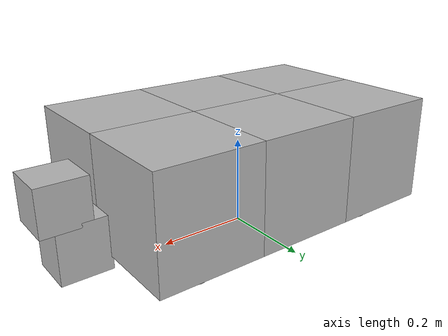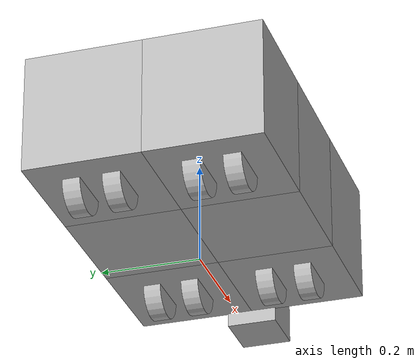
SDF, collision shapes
<sdf version='1.7'>
  <model name='robile3_config'>
    <link name='base_link'>
      <inertial>
        <pose>0.015691 9.6e-05 0.171122 0 -0 0</pose>
        <mass>31.1</mass>
        <inertia>
          <ixx>0.692584</ixx>
          <ixy>4.5574e-05</ixy>
          <ixz>-0.0273444</ixz>
          <iyy>1.56699</iyy>
          <iyz>6.36656e-06</iyz>
          <izz>1.9621</izz>
        </inertia>
      </inertial>
      <collision name='base_link_fixed_joint_lump__base_laser_mount_collision'>
        <pose>0.4 0 0.08 0 -0 1.57079</pose>
        <geometry>
          <box>
            <size>0.1 0.108 0.117</size>
          </box>
        </geometry>
      </collision>
      <collision name='base_link_fixed_joint_lump__base_laser_collision_1'>
        <pose>0.43 0 0.179 0 -0 0</pose>
        <geometry>
          <box>
            <size>0.105 0.1 0.1</size>
          </box>
        </geometry>
        <surface>
          <contact>
            <ode/>
          </contact>
          <friction>
            <ode/>
          </friction>
        </surface>
      </collision>
      <collision name='base_link_fixed_joint_lump__robile_1_link_collision_2'>
        <pose>0.2335 0.1166 0.169 0 -0 0</pose>
        <geometry>
          <box>
            <size>0.233 0.233 0.239</size>
          </box>
        </geometry>
      </collision>
      <collision name='base_link_fixed_joint_lump__robile_2_link_collision_3'>
        <pose>0.2335 -0.1164 0.169 0 -0 0</pose>
        <geometry>
          <box>
            <size>0.233 0.233 0.239</size>
          </box>
        </geometry>
      </collision>
      <collision name='base_link_fixed_joint_lump__robile_3_link_collision_4'>
        <pose>0.0005 0.1166 0.169 0 -0 0</pose>
        <geometry>
          <box>
            <size>0.233 0.233 0.239</size>
          </box>
        </geometry>
      </collision>
      <collision name='base_link_fixed_joint_lump__robile_4_link_collision_5'>
        <pose>0.0005 -0.1164 0.169 0 -0 0</pose>
        <geometry>
          <box>
            <size>0.233 0.233 0.239</size>
          </box>
        </geometry>
      </collision>
      <collision name='base_link_fixed_joint_lump__robile_5_link_collision_6'>
        <pose>-0.2325 0.1166 0.169 0 -0 0</pose>
        <geometry>
          <box>
            <size>0.233 0.233 0.239</size>
          </box>
        </geometry>
      </collision>
      <collision name='base_link_fixed_joint_lump__robile_6_link_collision_7'>
        <pose>-0.2325 -0.1164 0.169 0 -0 0</pose>
        <geometry>
          <box>
            <size>0.233 0.233 0.239</size>
          </box>
        </geometry>
      </collision>
      <visual name='base_link_fixed_joint_lump__base_laser_mount_visual'>
        <pose>0.4 0 0.08 0 -0 1.57079</pose>
        <geometry>
          <mesh>
            <scale>1 1 1</scale>
            <uri>model://robile_description/meshes/sensors/lms1xx_mount.dae</uri>
          </mesh>
        </geometry>
      </visual>
      <visual name='base_link_fixed_joint_lump__base_laser_visual_1'>
        <pose>0.43 0 0.229 0 -0 0</pose>
        <geometry>
          <mesh>
            <scale>1 1 1</scale>
            <uri>model://robile_description/meshes/sensors/sick-lms1xx.dae</uri>
          </mesh>
        </geometry>
      </visual>
      <visual name='base_link_fixed_joint_lump__robile_1_link_visual_2'>
        <pose>0.233 0.1165 0.05 0 -0 0</pose>
        <geometry>
          <mesh>
            <scale>1 1 1</scale>
            <uri>file:///home/jobe/ros2_ws/install/robile_description/share/robile_description/meshes/robile_brick_housing/wheeled_brick_housing.dae</uri>
          </mesh>
        </geometry>
      </visual>
      <visual name='base_link_fixed_joint_lump__robile_1_link_visual_3'>
        <pose>0.233 0.1165 0.05 0 -0 0</pose>
        <geometry>
          <mesh>
            <scale>1 1 1</scale>
            <uri>file:///home/jobe/ros2_ws/install/robile_description/share/robile_description/meshes/robile_brick_housing/lid.dae</uri>
          </mesh>
        </geometry>
      </visual>
      <visual name='base_link_fixed_joint_lump__robile_1_link_visual_4'>
        <pose>0.233 0.1165 0.05 0 -0 0</pose>
        <geometry>
          <mesh>
            <scale>1 1 1</scale>
            <uri>file:///home/jobe/ros2_ws/install/robile_description/share/robile_description/meshes/robile_brick_housing/lid_cover_red.dae</uri>
          </mesh>
        </geometry>
      </visual>
      <visual name='base_link_fixed_joint_lump__robile_2_link_visual_5'>
        <pose>0.233 -0.1165 0.05 0 -0 0</pose>
        <geometry>
          <mesh>
            <scale>1 1 1</scale>
            <uri>file:///home/jobe/ros2_ws/install/robile_description/share/robile_description/meshes/robile_brick_housing/wheeled_brick_housing.dae</uri>
          </mesh>
        </geometry>
      </visual>
      <visual name='base_link_fixed_joint_lump__robile_2_link_visual_6'>
        <pose>0.233 -0.1165 0.05 0 -0 0</pose>
        <geometry>
          <mesh>
            <scale>1 1 1</scale>
            <uri>file:///home/jobe/ros2_ws/install/robile_description/share/robile_description/meshes/robile_brick_housing/lid.dae</uri>
          </mesh>
        </geometry>
      </visual>
      <visual name='base_link_fixed_joint_lump__robile_2_link_visual_7'>
        <pose>0.233 -0.1165 0.05 0 -0 0</pose>
        <geometry>
          <mesh>
            <scale>1 1 1</scale>
            <uri>file:///home/jobe/ros2_ws/install/robile_description/share/robile_description/meshes/robile_brick_housing/lid_cover_red.dae</uri>
          </mesh>
        </geometry>
      </visual>
      <visual name='base_link_fixed_joint_lump__robile_3_link_visual_8'>
        <pose>0 0.1165 0.05 0 -0 0</pose>
        <geometry>
          <mesh>
            <scale>1 1 1</scale>
            <uri>file:///home/jobe/ros2_ws/install/robile_description/share/robile_description/meshes/robile_brick_housing/general_brick_housing.dae</uri>
          </mesh>
        </geometry>
      </visual>
      <visual name='base_link_fixed_joint_lump__robile_3_link_visual_9'>
        <pose>0 0.1165 0.05 0 -0 0</pose>
        <geometry>
          <mesh>
            <scale>1 1 1</scale>
            <uri>file:///home/jobe/ros2_ws/install/robile_description/share/robile_description/meshes/robile_brick_housing/lid.dae</uri>
          </mesh>
        </geometry>
      </visual>
      <visual name='base_link_fixed_joint_lump__robile_3_link_visual_10'>
        <pose>0 0.1165 0.05 0 -0 0</pose>
        <geometry>
          <mesh>
            <scale>1 1 1</scale>
            <uri>file:///home/jobe/ros2_ws/install/robile_description/share/robile_description/meshes/robile_brick_housing/lid_cover_yellow.dae</uri>
          </mesh>
        </geometry>
      </visual>
      <visual name='base_link_fixed_joint_lump__robile_4_link_visual_11'>
        <pose>0 -0.1165 0.05 0 -0 0</pose>
        <geometry>
          <mesh>
            <scale>1 1 1</scale>
            <uri>file:///home/jobe/ros2_ws/install/robile_description/share/robile_description/meshes/robile_brick_housing/general_brick_housing.dae</uri>
          </mesh>
        </geometry>
      </visual>
      <visual name='base_link_fixed_joint_lump__robile_4_link_visual_12'>
        <pose>0 -0.1165 0.05 0 -0 0</pose>
        <geometry>
          <mesh>
            <scale>1 1 1</scale>
            <uri>file:///home/jobe/ros2_ws/install/robile_description/share/robile_description/meshes/robile_brick_housing/lid.dae</uri>
          </mesh>
        </geometry>
      </visual>
      <visual name='base_link_fixed_joint_lump__robile_4_link_visual_13'>
        <pose>0 -0.1165 0.05 0 -0 0</pose>
        <geometry>
          <mesh>
            <scale>1 1 1</scale>
            <uri>file:///home/jobe/ros2_ws/install/robile_description/share/robile_description/meshes/robile_brick_housing/lid_cover_green.dae</uri>
          </mesh>
        </geometry>
      </visual>
      <visual name='base_link_fixed_joint_lump__robile_5_link_visual_14'>
        <pose>-0.233 0.1165 0.05 0 -0 0</pose>
        <geometry>
          <mesh>
            <scale>1 1 1</scale>
            <uri>file:///home/jobe/ros2_ws/install/robile_description/share/robile_description/meshes/robile_brick_housing/wheeled_brick_housing.dae</uri>
          </mesh>
        </geometry>
      </visual>
      <visual name='base_link_fixed_joint_lump__robile_5_link_visual_15'>
        <pose>-0.233 0.1165 0.05 0 -0 0</pose>
        <geometry>
          <mesh>
            <scale>1 1 1</scale>
            <uri>file:///home/jobe/ros2_ws/install/robile_description/share/robile_description/meshes/robile_brick_housing/lid.dae</uri>
          </mesh>
        </geometry>
      </visual>
      <visual name='base_link_fixed_joint_lump__robile_5_link_visual_16'>
        <pose>-0.233 0.1165 0.05 0 -0 0</pose>
        <geometry>
          <mesh>
            <scale>1 1 1</scale>
            <uri>file:///home/jobe/ros2_ws/install/robile_description/share/robile_description/meshes/robile_brick_housing/lid_cover_red.dae</uri>
          </mesh>
        </geometry>
      </visual>
      <visual name='base_link_fixed_joint_lump__robile_6_link_visual_17'>
        <pose>-0.233 -0.1165 0.05 0 -0 0</pose>
        <geometry>
          <mesh>
            <scale>1 1 1</scale>
            <uri>file:///home/jobe/ros2_ws/install/robile_description/share/robile_description/meshes/robile_brick_housing/wheeled_brick_housing.dae</uri>
          </mesh>
        </geometry>
      </visual>
      <visual name='base_link_fixed_joint_lump__robile_6_link_visual_18'>
        <pose>-0.233 -0.1165 0.05 0 -0 0</pose>
        <geometry>
          <mesh>
            <scale>1 1 1</scale>
            <uri>file:///home/jobe/ros2_ws/install/robile_description/share/robile_description/meshes/robile_brick_housing/lid.dae</uri>
          </mesh>
        </geometry>
      </visual>
      <visual name='base_link_fixed_joint_lump__robile_6_link_visual_19'>
        <pose>-0.233 -0.1165 0.05 0 -0 0</pose>
        <geometry>
          <mesh>
            <scale>1 1 1</scale>
            <uri>file:///home/jobe/ros2_ws/install/robile_description/share/robile_description/meshes/robile_brick_housing/lid_cover_red.dae</uri>
          </mesh>
        </geometry>
      </visual>
      <gravity>0</gravity>
      <sensor name='base_laser' type='ray'>
        <visualize>0</visualize>
        <update_rate>50</update_rate>
        <ray>
          <scan>
            <horizontal>
              <samples>720</samples>
              <resolution>1</resolution>
              <min_angle>-2.35619</min_angle>
              <max_angle>2.35619</max_angle>
            </horizontal>
          </scan>
          <range>
            <min>0.1</min>
            <max>30</max>
            <resolution>0.01</resolution>
          </range>
          <noise>
            <type>gaussian</type>
            <mean>0</mean>
            <stddev>0.01</stddev>
          </noise>
        </ray>
        <plugin name='gazebo_ros_laser' filename='libgazebo_ros_ray_sensor.so'>
          <ros>
            <remapping>~/out:=scan</remapping>
          </ros>
          <output_type>sensor_msgs/LaserScan</output_type>
        </plugin>
        <pose>0.43 0 0.229 0 -0 0</pose>
      </sensor>
    </link>
    <joint name='robile_1_drive_pivot_joint' type='revolute'>
      <pose relative_to='base_link'>0.233 0.1165 0.05 0 -0 0</pose>
      <parent>base_link</parent>
      <child>robile_1_drive_pivot_link</child>
      <axis>
        <xyz>0 0 1</xyz>
        <limit>
          <lower>-1e+16</lower>
          <upper>1e+16</upper>
        </limit>
        <dynamics>
          <spring_reference>0</spring_reference>
          <spring_stiffness>0</spring_stiffness>
        </dynamics>
      </axis>
    </joint>
    <link name='robile_1_drive_pivot_link'>
      <pose relative_to='robile_1_drive_pivot_joint'>0 0 0 0 -0 0</pose>
      <inertial>
        <pose>0 0 0 0 -0 0</pose>
        <mass>10</mass>
        <inertia>
          <ixx>0.0904817</ixx>
          <ixy>0</ixy>
          <ixz>0</ixz>
          <iyy>0.0904817</iyy>
          <iyz>0</iyz>
          <izz>0.0904817</izz>
        </inertia>
      </inertial>
      <collision name='robile_1_drive_pivot_link_collision'>
        <pose>0 0 0.07 0 -0 0</pose>
        <geometry>
          <box>
            <size>0.105 0.154 0.025</size>
          </box>
        </geometry>
      </collision>
      <visual name='robile_1_drive_pivot_link_visual'>
        <pose>0 0 0 0 -0 0</pose>
        <geometry>
          <mesh>
            <scale>1 1 1</scale>
            <uri>file:///home/jobe/ros2_ws/install/robile_description/share/robile_description/meshes/kelo_drive/kelo_drive_base.dae</uri>
          </mesh>
        </geometry>
      </visual>
    </link>
    <joint name='robile_1_drive_left_hub_wheel_joint' type='revolute'>
      <pose relative_to='robile_1_drive_pivot_link'>-0.01 0.039326 0.001514 0 -0 0</pose>
      <parent>robile_1_drive_pivot_link</parent>
      <child>robile_1_drive_left_hub_wheel_link</child>
      <axis>
        <xyz>0 1 0</xyz>
        <limit>
          <lower>-1e+16</lower>
          <upper>1e+16</upper>
        </limit>
        <dynamics>
          <spring_reference>0</spring_reference>
          <spring_stiffness>0</spring_stiffness>
        </dynamics>
      </axis>
    </joint>
    <link name='robile_1_drive_left_hub_wheel_link'>
      <pose relative_to='robile_1_drive_left_hub_wheel_joint'>0 0 0 0 -0 0</pose>
      <inertial>
        <pose>0 0 0 0 -0 0</pose>
        <mass>10</mass>
        <inertia>
          <ixx>0.0904817</ixx>
          <ixy>0</ixy>
          <ixz>0</ixz>
          <iyy>0.0904817</iyy>
          <iyz>0</iyz>
          <izz>0.0904817</izz>
        </inertia>
      </inertial>
      <collision name='robile_1_drive_left_hub_wheel_link_collision'>
        <pose>0 0 0 1.5708 -0 0</pose>
        <geometry>
          <cylinder>
            <length>0.035</length>
            <radius>0.0515</radius>
          </cylinder>
        </geometry>
      </collision>
      <visual name='robile_1_drive_left_hub_wheel_link_visual'>
        <pose>0 0 0 0 -0 0</pose>
        <geometry>
          <mesh>
            <scale>1 1 1</scale>
            <uri>file:///home/jobe/ros2_ws/install/robile_description/share/robile_description/meshes/kelo_drive/kelo_drive_wheel.dae</uri>
          </mesh>
        </geometry>
      </visual>
    </link>
    <joint name='robile_1_drive_right_hub_wheel_joint' type='revolute'>
      <pose relative_to='robile_1_drive_pivot_link'>-0.01 -0.039326 0.001514 0 -0 0</pose>
      <parent>robile_1_drive_pivot_link</parent>
      <child>robile_1_drive_right_hub_wheel_link</child>
      <axis>
        <xyz>0 1 0</xyz>
        <limit>
          <lower>-1e+16</lower>
          <upper>1e+16</upper>
        </limit>
        <dynamics>
          <spring_reference>0</spring_reference>
          <spring_stiffness>0</spring_stiffness>
        </dynamics>
      </axis>
    </joint>
    <link name='robile_1_drive_right_hub_wheel_link'>
      <pose relative_to='robile_1_drive_right_hub_wheel_joint'>0 0 0 0 -0 0</pose>
      <inertial>
        <pose>0 0 0 0 -0 0</pose>
        <mass>10</mass>
        <inertia>
          <ixx>0.0904817</ixx>
          <ixy>0</ixy>
          <ixz>0</ixz>
          <iyy>0.0904817</iyy>
          <iyz>0</iyz>
          <izz>0.0904817</izz>
        </inertia>
      </inertial>
      <collision name='robile_1_drive_right_hub_wheel_link_collision'>
        <pose>0 0 0 1.5708 -0 0</pose>
        <geometry>
          <cylinder>
            <length>0.035</length>
            <radius>0.0515</radius>
          </cylinder>
        </geometry>
      </collision>
      <visual name='robile_1_drive_right_hub_wheel_link_visual'>
        <pose>0 0 0 0 -0 0</pose>
        <geometry>
          <mesh>
            <scale>1 1 1</scale>
            <uri>file:///home/jobe/ros2_ws/install/robile_description/share/robile_description/meshes/kelo_drive/kelo_drive_wheel.dae</uri>
          </mesh>
        </geometry>
      </visual>
    </link>
    <joint name='robile_2_drive_pivot_joint' type='revolute'>
      <pose relative_to='base_link'>0.233 -0.1165 0.05 0 -0 0</pose>
      <parent>base_link</parent>
      <child>robile_2_drive_pivot_link</child>
      <axis>
        <xyz>0 0 1</xyz>
        <limit>
          <lower>-1e+16</lower>
          <upper>1e+16</upper>
        </limit>
        <dynamics>
          <spring_reference>0</spring_reference>
          <spring_stiffness>0</spring_stiffness>
        </dynamics>
      </axis>
    </joint>
    <link name='robile_2_drive_pivot_link'>
      <pose relative_to='robile_2_drive_pivot_joint'>0 0 0 0 -0 0</pose>
      <inertial>
        <pose>0 0 0 0 -0 0</pose>
        <mass>10</mass>
        <inertia>
          <ixx>0.0904817</ixx>
          <ixy>0</ixy>
          <ixz>0</ixz>
          <iyy>0.0904817</iyy>
          <iyz>0</iyz>
          <izz>0.0904817</izz>
        </inertia>
      </inertial>
      <collision name='robile_2_drive_pivot_link_collision'>
        <pose>0 0 0.07 0 -0 0</pose>
        <geometry>
          <box>
            <size>0.105 0.154 0.025</size>
          </box>
        </geometry>
      </collision>
      <visual name='robile_2_drive_pivot_link_visual'>
        <pose>0 0 0 0 -0 0</pose>
        <geometry>
          <mesh>
            <scale>1 1 1</scale>
            <uri>file:///home/jobe/ros2_ws/install/robile_description/share/robile_description/meshes/kelo_drive/kelo_drive_base.dae</uri>
          </mesh>
        </geometry>
      </visual>
    </link>
    <joint name='robile_2_drive_left_hub_wheel_joint' type='revolute'>
      <pose relative_to='robile_2_drive_pivot_link'>-0.01 0.039326 0.001514 0 -0 0</pose>
      <parent>robile_2_drive_pivot_link</parent>
      <child>robile_2_drive_left_hub_wheel_link</child>
      <axis>
        <xyz>0 1 0</xyz>
        <limit>
          <lower>-1e+16</lower>
          <upper>1e+16</upper>
        </limit>
        <dynamics>
          <spring_reference>0</spring_reference>
          <spring_stiffness>0</spring_stiffness>
        </dynamics>
      </axis>
    </joint>
    <link name='robile_2_drive_left_hub_wheel_link'>
      <pose relative_to='robile_2_drive_left_hub_wheel_joint'>0 0 0 0 -0 0</pose>
      <inertial>
        <pose>0 0 0 0 -0 0</pose>
        <mass>10</mass>
        <inertia>
          <ixx>0.0904817</ixx>
          <ixy>0</ixy>
          <ixz>0</ixz>
          <iyy>0.0904817</iyy>
          <iyz>0</iyz>
          <izz>0.0904817</izz>
        </inertia>
      </inertial>
      <collision name='robile_2_drive_left_hub_wheel_link_collision'>
        <pose>0 0 0 1.5708 -0 0</pose>
        <geometry>
          <cylinder>
            <length>0.035</length>
            <radius>0.0515</radius>
          </cylinder>
        </geometry>
      </collision>
      <visual name='robile_2_drive_left_hub_wheel_link_visual'>
        <pose>0 0 0 0 -0 0</pose>
        <geometry>
          <mesh>
            <scale>1 1 1</scale>
            <uri>file:///home/jobe/ros2_ws/install/robile_description/share/robile_description/meshes/kelo_drive/kelo_drive_wheel.dae</uri>
          </mesh>
        </geometry>
      </visual>
    </link>
    <joint name='robile_2_drive_right_hub_wheel_joint' type='revolute'>
      <pose relative_to='robile_2_drive_pivot_link'>-0.01 -0.039326 0.001514 0 -0 0</pose>
      <parent>robile_2_drive_pivot_link</parent>
      <child>robile_2_drive_right_hub_wheel_link</child>
      <axis>
        <xyz>0 1 0</xyz>
        <limit>
          <lower>-1e+16</lower>
          <upper>1e+16</upper>
        </limit>
        <dynamics>
          <spring_reference>0</spring_reference>
          <spring_stiffness>0</spring_stiffness>
        </dynamics>
      </axis>
    </joint>
    <link name='robile_2_drive_right_hub_wheel_link'>
      <pose relative_to='robile_2_drive_right_hub_wheel_joint'>0 0 0 0 -0 0</pose>
      <inertial>
        <pose>0 0 0 0 -0 0</pose>
        <mass>10</mass>
        <inertia>
          <ixx>0.0904817</ixx>
          <ixy>0</ixy>
          <ixz>0</ixz>
          <iyy>0.0904817</iyy>
          <iyz>0</iyz>
          <izz>0.0904817</izz>
        </inertia>
      </inertial>
      <collision name='robile_2_drive_right_hub_wheel_link_collision'>
        <pose>0 0 0 1.5708 -0 0</pose>
        <geometry>
          <cylinder>
            <length>0.035</length>
            <radius>0.0515</radius>
          </cylinder>
        </geometry>
      </collision>
      <visual name='robile_2_drive_right_hub_wheel_link_visual'>
        <pose>0 0 0 0 -0 0</pose>
        <geometry>
          <mesh>
            <scale>1 1 1</scale>
            <uri>file:///home/jobe/ros2_ws/install/robile_description/share/robile_description/meshes/kelo_drive/kelo_drive_wheel.dae</uri>
          </mesh>
        </geometry>
      </visual>
    </link>
    <joint name='robile_5_drive_pivot_joint' type='revolute'>
      <pose relative_to='base_link'>-0.233 0.1165 0.05 0 -0 0</pose>
      <parent>base_link</parent>
      <child>robile_5_drive_pivot_link</child>
      <axis>
        <xyz>0 0 1</xyz>
        <limit>
          <lower>-1e+16</lower>
          <upper>1e+16</upper>
        </limit>
        <dynamics>
          <spring_reference>0</spring_reference>
          <spring_stiffness>0</spring_stiffness>
        </dynamics>
      </axis>
    </joint>
    <link name='robile_5_drive_pivot_link'>
      <pose relative_to='robile_5_drive_pivot_joint'>0 0 0 0 -0 0</pose>
      <inertial>
        <pose>0 0 0 0 -0 0</pose>
        <mass>10</mass>
        <inertia>
          <ixx>0.0904817</ixx>
          <ixy>0</ixy>
          <ixz>0</ixz>
          <iyy>0.0904817</iyy>
          <iyz>0</iyz>
          <izz>0.0904817</izz>
        </inertia>
      </inertial>
      <collision name='robile_5_drive_pivot_link_collision'>
        <pose>0 0 0.07 0 -0 0</pose>
        <geometry>
          <box>
            <size>0.105 0.154 0.025</size>
          </box>
        </geometry>
      </collision>
      <visual name='robile_5_drive_pivot_link_visual'>
        <pose>0 0 0 0 -0 0</pose>
        <geometry>
          <mesh>
            <scale>1 1 1</scale>
            <uri>file:///home/jobe/ros2_ws/install/robile_description/share/robile_description/meshes/kelo_drive/kelo_drive_base.dae</uri>
          </mesh>
        </geometry>
      </visual>
    </link>
    <joint name='robile_5_drive_left_hub_wheel_joint' type='revolute'>
      <pose relative_to='robile_5_drive_pivot_link'>-0.01 0.039326 0.001514 0 -0 0</pose>
      <parent>robile_5_drive_pivot_link</parent>
      <child>robile_5_drive_left_hub_wheel_link</child>
      <axis>
        <xyz>0 1 0</xyz>
        <limit>
          <lower>-1e+16</lower>
          <upper>1e+16</upper>
        </limit>
        <dynamics>
          <spring_reference>0</spring_reference>
          <spring_stiffness>0</spring_stiffness>
        </dynamics>
      </axis>
    </joint>
    <link name='robile_5_drive_left_hub_wheel_link'>
      <pose relative_to='robile_5_drive_left_hub_wheel_joint'>0 0 0 0 -0 0</pose>
      <inertial>
        <pose>0 0 0 0 -0 0</pose>
        <mass>10</mass>
        <inertia>
          <ixx>0.0904817</ixx>
          <ixy>0</ixy>
          <ixz>0</ixz>
          <iyy>0.0904817</iyy>
          <iyz>0</iyz>
          <izz>0.0904817</izz>
        </inertia>
      </inertial>
      <collision name='robile_5_drive_left_hub_wheel_link_collision'>
        <pose>0 0 0 1.5708 -0 0</pose>
        <geometry>
          <cylinder>
            <length>0.035</length>
            <radius>0.0515</radius>
          </cylinder>
        </geometry>
      </collision>
      <visual name='robile_5_drive_left_hub_wheel_link_visual'>
        <pose>0 0 0 0 -0 0</pose>
        <geometry>
          <mesh>
            <scale>1 1 1</scale>
            <uri>file:///home/jobe/ros2_ws/install/robile_description/share/robile_description/meshes/kelo_drive/kelo_drive_wheel.dae</uri>
          </mesh>
        </geometry>
      </visual>
    </link>
    <joint name='robile_5_drive_right_hub_wheel_joint' type='revolute'>
      <pose relative_to='robile_5_drive_pivot_link'>-0.01 -0.039326 0.001514 0 -0 0</pose>
      <parent>robile_5_drive_pivot_link</parent>
      <child>robile_5_drive_right_hub_wheel_link</child>
      <axis>
        <xyz>0 1 0</xyz>
        <limit>
          <lower>-1e+16</lower>
          <upper>1e+16</upper>
        </limit>
        <dynamics>
          <spring_reference>0</spring_reference>
          <spring_stiffness>0</spring_stiffness>
        </dynamics>
      </axis>
    </joint>
    <link name='robile_5_drive_right_hub_wheel_link'>
      <pose relative_to='robile_5_drive_right_hub_wheel_joint'>0 0 0 0 -0 0</pose>
      <inertial>
        <pose>0 0 0 0 -0 0</pose>
        <mass>10</mass>
        <inertia>
          <ixx>0.0904817</ixx>
          <ixy>0</ixy>
          <ixz>0</ixz>
          <iyy>0.0904817</iyy>
          <iyz>0</iyz>
          <izz>0.0904817</izz>
        </inertia>
      </inertial>
      <collision name='robile_5_drive_right_hub_wheel_link_collision'>
        <pose>0 0 0 1.5708 -0 0</pose>
        <geometry>
          <cylinder>
            <length>0.035</length>
            <radius>0.0515</radius>
          </cylinder>
        </geometry>
      </collision>
      <visual name='robile_5_drive_right_hub_wheel_link_visual'>
        <pose>0 0 0 0 -0 0</pose>
        <geometry>
          <mesh>
            <scale>1 1 1</scale>
            <uri>file:///home/jobe/ros2_ws/install/robile_description/share/robile_description/meshes/kelo_drive/kelo_drive_wheel.dae</uri>
          </mesh>
        </geometry>
      </visual>
    </link>
    <joint name='robile_6_drive_pivot_joint' type='revolute'>
      <pose relative_to='base_link'>-0.233 -0.1165 0.05 0 -0 0</pose>
      <parent>base_link</parent>
      <child>robile_6_drive_pivot_link</child>
      <axis>
        <xyz>0 0 1</xyz>
        <limit>
          <lower>-1e+16</lower>
          <upper>1e+16</upper>
        </limit>
        <dynamics>
          <spring_reference>0</spring_reference>
          <spring_stiffness>0</spring_stiffness>
        </dynamics>
      </axis>
    </joint>
    <link name='robile_6_drive_pivot_link'>
      <pose relative_to='robile_6_drive_pivot_joint'>0 0 0 0 -0 0</pose>
      <inertial>
        <pose>0 0 0 0 -0 0</pose>
        <mass>10</mass>
        <inertia>
          <ixx>0.0904817</ixx>
          <ixy>0</ixy>
          <ixz>0</ixz>
          <iyy>0.0904817</iyy>
          <iyz>0</iyz>
          <izz>0.0904817</izz>
        </inertia>
      </inertial>
      <collision name='robile_6_drive_pivot_link_collision'>
        <pose>0 0 0.07 0 -0 0</pose>
        <geometry>
          <box>
            <size>0.105 0.154 0.025</size>
          </box>
        </geometry>
      </collision>
      <visual name='robile_6_drive_pivot_link_visual'>
        <pose>0 0 0 0 -0 0</pose>
        <geometry>
          <mesh>
            <scale>1 1 1</scale>
            <uri>file:///home/jobe/ros2_ws/install/robile_description/share/robile_description/meshes/kelo_drive/kelo_drive_base.dae</uri>
          </mesh>
        </geometry>
      </visual>
    </link>
    <joint name='robile_6_drive_left_hub_wheel_joint' type='revolute'>
      <pose relative_to='robile_6_drive_pivot_link'>-0.01 0.039326 0.001514 0 -0 0</pose>
      <parent>robile_6_drive_pivot_link</parent>
      <child>robile_6_drive_left_hub_wheel_link</child>
      <axis>
        <xyz>0 1 0</xyz>
        <limit>
          <lower>-1e+16</lower>
          <upper>1e+16</upper>
        </limit>
        <dynamics>
          <spring_reference>0</spring_reference>
          <spring_stiffness>0</spring_stiffness>
        </dynamics>
      </axis>
    </joint>
    <link name='robile_6_drive_left_hub_wheel_link'>
      <pose relative_to='robile_6_drive_left_hub_wheel_joint'>0 0 0 0 -0 0</pose>
      <inertial>
        <pose>0 0 0 0 -0 0</pose>
        <mass>10</mass>
        <inertia>
          <ixx>0.0904817</ixx>
          <ixy>0</ixy>
          <ixz>0</ixz>
          <iyy>0.0904817</iyy>
          <iyz>0</iyz>
          <izz>0.0904817</izz>
        </inertia>
      </inertial>
      <collision name='robile_6_drive_left_hub_wheel_link_collision'>
        <pose>0 0 0 1.5708 -0 0</pose>
        <geometry>
          <cylinder>
            <length>0.035</length>
            <radius>0.0515</radius>
          </cylinder>
        </geometry>
      </collision>
      <visual name='robile_6_drive_left_hub_wheel_link_visual'>
        <pose>0 0 0 0 -0 0</pose>
        <geometry>
          <mesh>
            <scale>1 1 1</scale>
            <uri>file:///home/jobe/ros2_ws/install/robile_description/share/robile_description/meshes/kelo_drive/kelo_drive_wheel.dae</uri>
          </mesh>
        </geometry>
      </visual>
    </link>
    <joint name='robile_6_drive_right_hub_wheel_joint' type='revolute'>
      <pose relative_to='robile_6_drive_pivot_link'>-0.01 -0.039326 0.001514 0 -0 0</pose>
      <parent>robile_6_drive_pivot_link</parent>
      <child>robile_6_drive_right_hub_wheel_link</child>
      <axis>
        <xyz>0 1 0</xyz>
        <limit>
          <lower>-1e+16</lower>
          <upper>1e+16</upper>
        </limit>
        <dynamics>
          <spring_reference>0</spring_reference>
          <spring_stiffness>0</spring_stiffness>
        </dynamics>
      </axis>
    </joint>
    <link name='robile_6_drive_right_hub_wheel_link'>
      <pose relative_to='robile_6_drive_right_hub_wheel_joint'>0 0 0 0 -0 0</pose>
      <inertial>
        <pose>0 0 0 0 -0 0</pose>
        <mass>10</mass>
        <inertia>
          <ixx>0.0904817</ixx>
          <ixy>0</ixy>
          <ixz>0</ixz>
          <iyy>0.0904817</iyy>
          <iyz>0</iyz>
          <izz>0.0904817</izz>
        </inertia>
      </inertial>
      <collision name='robile_6_drive_right_hub_wheel_link_collision'>
        <pose>0 0 0 1.5708 -0 0</pose>
        <geometry>
          <cylinder>
            <length>0.035</length>
            <radius>0.0515</radius>
          </cylinder>
        </geometry>
      </collision>
      <visual name='robile_6_drive_right_hub_wheel_link_visual'>
        <pose>0 0 0 0 -0 0</pose>
        <geometry>
          <mesh>
            <scale>1 1 1</scale>
            <uri>file:///home/jobe/ros2_ws/install/robile_description/share/robile_description/meshes/kelo_drive/kelo_drive_wheel.dae</uri>
          </mesh>
        </geometry>
      </visual>
    </link>
  </model>
</sdf>
